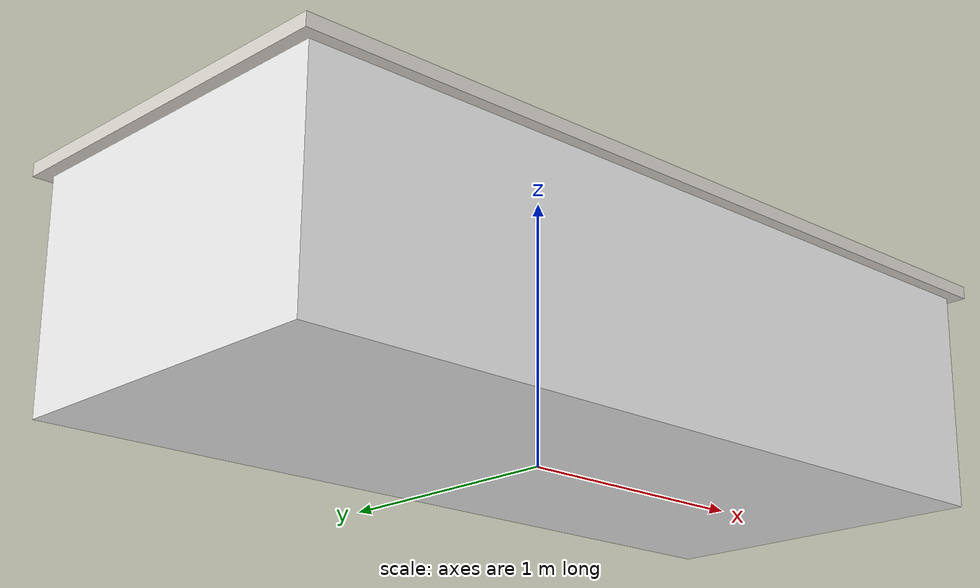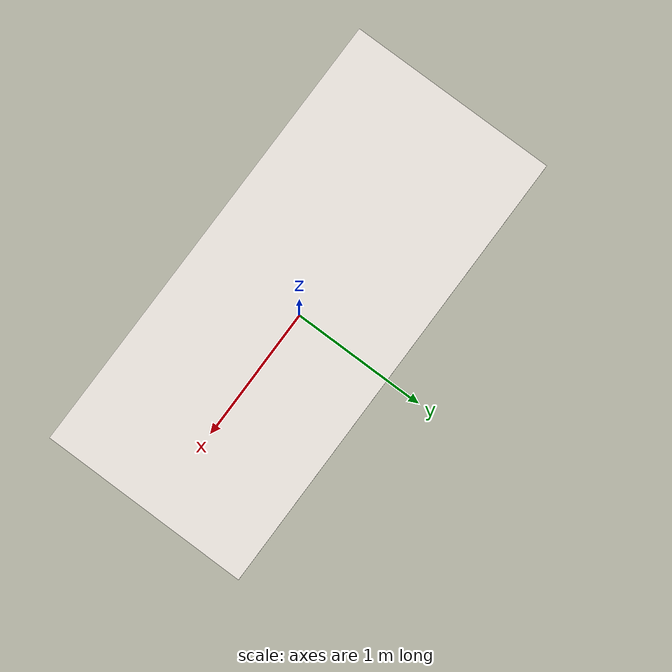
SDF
<?xml version="1.0" ?>
<sdf version="1.7">
  <model name="kitchen_island">
    <static>true</static>

    <!-- Cabinet body: 3.20 × 1.40 × 0.86 m -->
    <link name="cabinet">
      <pose>0 0 0.43 0 0 0</pose>
      <collision name="collision">
        <geometry><box><size>3.20 1.40 0.86</size></box></geometry>
      </collision>
      <visual name="visual">
        <geometry><box><size>3.20 1.40 0.86</size></box></geometry>
        <material>
          <ambient>0.95 0.95 0.95 1</ambient>
          <diffuse>0.95 0.95 0.95 1</diffuse>
          <specular>0.30 0.30 0.30 1</specular>
        </material>
      </visual>
    </link>

    <!-- Counter top: marble/stone look, slightly overhanging -->
    <link name="counter_top">
      <pose>0 0 0.875 0 0 0</pose>
      <collision name="collision">
        <geometry><box><size>3.30 1.50 0.05</size></box></geometry>
      </collision>
      <visual name="visual">
        <geometry><box><size>3.30 1.50 0.05</size></box></geometry>
        <material>
          <ambient>0.85 0.83 0.80 1</ambient>
          <diffuse>0.88 0.86 0.83 1</diffuse>
          <specular>0.40 0.40 0.40 1</specular>
        </material>
      </visual>
    </link>

  </model>
</sdf>
